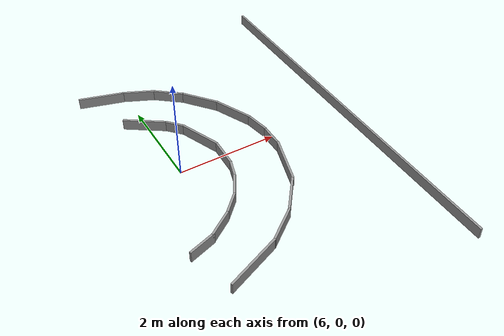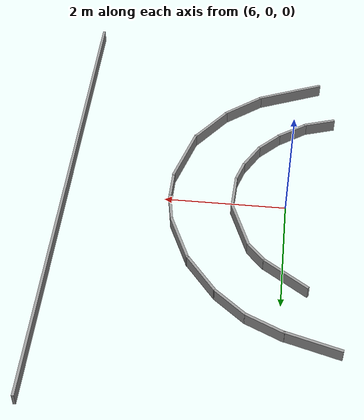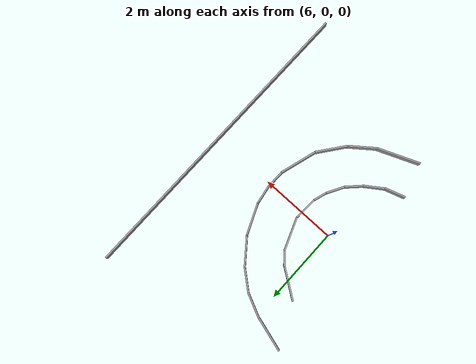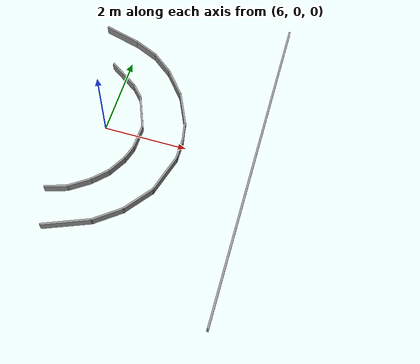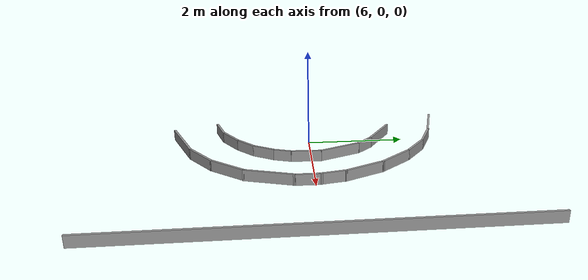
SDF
<sdf version="1.5">
 <world name="default">
  <model name="grey_wall_6">
   <link name="link">
    <pose>-0.467859 -0.097477 1.4 0 -0 0.009516</pose>
    <inertial>
     <inertia><ixx>nan</ixx><ixy>0</ixy><ixz>0</ixz><iyy>nan</iyy><iyz>0</iyz><izz>nan</izz></inertia>
     <mass>0</mass>
    </inertial>
    <visual name="visual">
     <cast_shadows>0</cast_shadows>
     <geometry><box><size>8.07319 0.043266 0.226147</size></box></geometry>
     <material>
      <script>
       <uri>model://grey_wall/materials/scripts</uri>
       <uri>model://grey_wall/materials/textures</uri>
       <name>vrc/grey_wall</name>
      </script>
      <ambient>1 1 1 1</ambient>
      <diffuse>1 1 1 1</diffuse>
      <specular>0 0 0 1</specular>
      <emissive>0 0 0 1</emissive>
     </material>
    </visual>
    <collision name="collision">
     <geometry><box><size>8.07319 0.043266 0.226147</size></box></geometry>
     <surface>
      <friction>
       <ode><mu>1</mu><mu2>1</mu2><fdir1>0 0 0</fdir1><slip1>0</slip1><slip2>0</slip2></ode>
       <torsional>
        <coefficient>1</coefficient>
        <patch_radius>0</patch_radius>
        <surface_radius>0</surface_radius>
        <use_patch_radius>1</use_patch_radius>
        <ode><slip>0</slip></ode>
       </torsional>
      </friction>
      <bounce><restitution_coefficient>0</restitution_coefficient><threshold>1e+06</threshold></bounce>
      <contact>
       <collide_without_contact>0</collide_without_contact>
       <collide_without_contact_bitmask>1</collide_without_contact_bitmask>
       <collide_bitmask>1</collide_bitmask>
       <ode>
        <soft_cfm>0</soft_cfm>
        <soft_erp>0.2</soft_erp>
        <kp>1e+13</kp>
        <kd>1</kd>
        <max_vel>0.01</max_vel>
        <min_depth>0</min_depth>
       </ode>
       <bullet>
        <split_impulse>1</split_impulse>
        <split_impulse_penetration_threshold>-0.01</split_impulse_penetration_threshold>
        <soft_cfm>0</soft_cfm>
        <soft_erp>0.2</soft_erp>
        <kp>1e+13</kp>
        <kd>1</kd>
       </bullet>
      </contact>
     </surface>
    </collision>
   </link>
   <static>1</static>
   <pose>9.55959 0.474995 -1.30963 0 -0 1.55954</pose>
  </model>
  <model name="grey_wall_21">
   <link name="link">
    <pose>0.035544 -0.032533 1.4 0 0 -0.276766</pose>
    <inertial>
     <inertia><ixx>nan</ixx><ixy>0</ixy><ixz>0</ixz><iyy>nan</iyy><iyz>0</iyz><izz>nan</izz></inertia>
     <mass>0</mass>
    </inertial>
    <visual name="visual">
     <cast_shadows>0</cast_shadows>
     <geometry><box><size>0.919493 0.043266 0.226147</size></box></geometry>
     <material>
      <script>
       <uri>model://grey_wall/materials/scripts</uri>
       <uri>model://grey_wall/materials/textures</uri>
       <name>vrc/grey_wall</name>
      </script>
      <ambient>1 1 1 1</ambient>
      <diffuse>1 1 1 1</diffuse>
      <specular>0 0 0 1</specular>
      <emissive>0 0 0 1</emissive>
     </material>
    </visual>
    <collision name="collision">
     <geometry><box><size>0.919493 0.043266 0.226147</size></box></geometry>
     <surface>
      <friction>
       <ode><mu>1</mu><mu2>1</mu2><fdir1>0 0 0</fdir1><slip1>0</slip1><slip2>0</slip2></ode>
       <torsional>
        <coefficient>1</coefficient>
        <patch_radius>0</patch_radius>
        <surface_radius>0</surface_radius>
        <use_patch_radius>1</use_patch_radius>
        <ode><slip>0</slip></ode>
       </torsional>
      </friction>
      <bounce><restitution_coefficient>0</restitution_coefficient><threshold>1e+06</threshold></bounce>
      <contact>
       <collide_without_contact>0</collide_without_contact>
       <collide_without_contact_bitmask>1</collide_without_contact_bitmask>
       <collide_bitmask>1</collide_bitmask>
       <ode>
        <soft_cfm>0</soft_cfm>
        <soft_erp>0.2</soft_erp>
        <kp>1e+13</kp>
        <kd>1</kd>
        <max_vel>0.01</max_vel>
        <min_depth>0</min_depth>
       </ode>
       <bullet>
        <split_impulse>1</split_impulse>
        <split_impulse_penetration_threshold>-0.01</split_impulse_penetration_threshold>
        <soft_cfm>0</soft_cfm>
        <soft_erp>0.2</soft_erp>
        <kp>1e+13</kp>
        <kd>1</kd>
       </bullet>
      </contact>
     </surface>
    </collision>
   </link>
   <static>1</static>
   <pose>5.47269 2.76103 -1.30469 0 -0 0</pose>
  </model>
  <model name="grey_wall_22">
   <link name="link">
    <pose>0.073037 -0.320766 1.4 0 -0 1.98383</pose>
    <inertial>
     <inertia><ixx>nan</ixx><ixy>0</ixy><ixz>0</ixz><iyy>nan</iyy><iyz>0</iyz><izz>nan</izz></inertia>
     <mass>0</mass>
    </inertial>
    <visual name="visual">
     <cast_shadows>0</cast_shadows>
     <geometry><box><size>0.873424 0.043266 0.226147</size></box></geometry>
     <material>
      <script>
       <uri>model://grey_wall/materials/scripts</uri>
       <uri>model://grey_wall/materials/textures</uri>
       <name>vrc/grey_wall</name>
      </script>
      <ambient>1 1 1 1</ambient>
      <diffuse>1 1 1 1</diffuse>
      <specular>0 0 0 1</specular>
      <emissive>0 0 0 1</emissive>
     </material>
    </visual>
    <collision name="collision">
     <geometry><box><size>0.873424 0.043266 0.226147</size></box></geometry>
     <surface>
      <friction>
       <ode><mu>1</mu><mu2>1</mu2><fdir1>0 0 0</fdir1><slip1>0</slip1><slip2>0</slip2></ode>
       <torsional>
        <coefficient>1</coefficient>
        <patch_radius>0</patch_radius>
        <surface_radius>0</surface_radius>
        <use_patch_radius>1</use_patch_radius>
        <ode><slip>0</slip></ode>
       </torsional>
      </friction>
      <bounce><restitution_coefficient>0</restitution_coefficient><threshold>1e+06</threshold></bounce>
      <contact>
       <collide_without_contact>0</collide_without_contact>
       <collide_without_contact_bitmask>1</collide_without_contact_bitmask>
       <collide_bitmask>1</collide_bitmask>
       <ode>
        <soft_cfm>0</soft_cfm>
        <soft_erp>0.2</soft_erp>
        <kp>1e+13</kp>
        <kd>1</kd>
        <max_vel>0.01</max_vel>
        <min_depth>0</min_depth>
       </ode>
       <bullet>
        <split_impulse>1</split_impulse>
        <split_impulse_penetration_threshold>-0.01</split_impulse_penetration_threshold>
        <soft_cfm>0</soft_cfm>
        <soft_erp>0.2</soft_erp>
        <kp>1e+13</kp>
        <kd>1</kd>
       </bullet>
      </contact>
     </surface>
    </collision>
   </link>
   <static>1</static>
   <pose>7.5823 1.27734 -1.30539 0 -0 0</pose>
  </model>
  <model name="grey_wall_23">
   <link name="link">
    <pose>-0.22202 -0.093309 1.4 0 0 -0.901692</pose>
    <inertial>
     <inertia><ixx>nan</ixx><ixy>0</ixy><ixz>0</ixz><iyy>nan</iyy><iyz>0</iyz><izz>nan</izz></inertia>
     <mass>0</mass>
    </inertial>
    <visual name="visual">
     <cast_shadows>0</cast_shadows>
     <geometry><box><size>0.809751 0.043266 0.226147</size></box></geometry>
     <material>
      <script>
       <uri>model://grey_wall/materials/scripts</uri>
       <uri>model://grey_wall/materials/textures</uri>
       <name>vrc/grey_wall</name>
      </script>
      <ambient>1 1 1 1</ambient>
      <diffuse>1 1 1 1</diffuse>
      <specular>0 0 0 1</specular>
      <emissive>0 0 0 1</emissive>
     </material>
    </visual>
    <collision name="collision">
     <geometry><box><size>0.809751 0.043266 0.226147</size></box></geometry>
     <surface>
      <friction>
       <ode><mu>1</mu><mu2>1</mu2><fdir1>0 0 0</fdir1><slip1>0</slip1><slip2>0</slip2></ode>
       <torsional>
        <coefficient>1</coefficient>
        <patch_radius>0</patch_radius>
        <surface_radius>0</surface_radius>
        <use_patch_radius>1</use_patch_radius>
        <ode><slip>0</slip></ode>
       </torsional>
      </friction>
      <bounce><restitution_coefficient>0</restitution_coefficient><threshold>1e+06</threshold></bounce>
      <contact>
       <collide_without_contact>0</collide_without_contact>
       <collide_without_contact_bitmask>1</collide_without_contact_bitmask>
       <collide_bitmask>1</collide_bitmask>
       <ode>
        <soft_cfm>0</soft_cfm>
        <soft_erp>0.2</soft_erp>
        <kp>1e+13</kp>
        <kd>1</kd>
        <max_vel>0.01</max_vel>
        <min_depth>0</min_depth>
       </ode>
       <bullet>
        <split_impulse>1</split_impulse>
        <split_impulse_penetration_threshold>-0.01</split_impulse_penetration_threshold>
        <soft_cfm>0</soft_cfm>
        <soft_erp>0.2</soft_erp>
        <kp>1e+13</kp>
        <kd>1</kd>
       </bullet>
      </contact>
     </surface>
    </collision>
   </link>
   <static>1</static>
   <pose>7.47559 1.72601 -1.30539 0 -0 0</pose>
  </model>
  <model name="grey_wall_24">
   <link name="link">
    <pose>-0.148704 0.041752 1.4 0 0 -0.006459</pose>
    <inertial>
     <inertia><ixx>nan</ixx><ixy>0</ixy><ixz>0</ixz><iyy>nan</iyy><iyz>0</iyz><izz>nan</izz></inertia>
     <mass>0</mass>
    </inertial>
    <visual name="visual">
     <cast_shadows>0</cast_shadows>
     <geometry><box><size>0.555313 0.043266 0.226147</size></box></geometry>
     <material>
      <script>
       <uri>model://grey_wall/materials/scripts</uri>
       <uri>model://grey_wall/materials/textures</uri>
       <name>vrc/grey_wall</name>
      </script>
      <ambient>1 1 1 1</ambient>
      <diffuse>1 1 1 1</diffuse>
      <specular>0 0 0 1</specular>
      <emissive>0 0 0 1</emissive>
     </material>
    </visual>
    <collision name="collision">
     <geometry><box><size>0.555313 0.043266 0.226147</size></box></geometry>
     <surface>
      <friction>
       <ode><mu>1</mu><mu2>1</mu2><fdir1>0 0 0</fdir1><slip1>0</slip1><slip2>0</slip2></ode>
       <torsional>
        <coefficient>1</coefficient>
        <patch_radius>0</patch_radius>
        <surface_radius>0</surface_radius>
        <use_patch_radius>1</use_patch_radius>
        <ode><slip>0</slip></ode>
       </torsional>
      </friction>
      <bounce><restitution_coefficient>0</restitution_coefficient><threshold>1e+06</threshold></bounce>
      <contact>
       <collide_without_contact>0</collide_without_contact>
       <collide_without_contact_bitmask>1</collide_without_contact_bitmask>
       <collide_bitmask>1</collide_bitmask>
       <ode>
        <soft_cfm>0</soft_cfm>
        <soft_erp>0.2</soft_erp>
        <kp>1e+13</kp>
        <kd>1</kd>
        <max_vel>0.01</max_vel>
        <min_depth>0</min_depth>
       </ode>
       <bullet>
        <split_impulse>1</split_impulse>
        <split_impulse_penetration_threshold>-0.01</split_impulse_penetration_threshold>
        <soft_cfm>0</soft_cfm>
        <soft_erp>0.2</soft_erp>
        <kp>1e+13</kp>
        <kd>1</kd>
       </bullet>
      </contact>
     </surface>
    </collision>
   </link>
   <static>1</static>
   <pose>7.94232 -0.003249 -1.30963 0 -0 1.55954</pose>
  </model>
  <model name="grey_wall_36">
   <link name="link">
    <pose>0.116198 0.10218 1.4 0 -0 0.389479</pose>
    <inertial>
     <inertia><ixx>nan</ixx><ixy>0</ixy><ixz>0</ixz><iyy>nan</iyy><iyz>0</iyz><izz>nan</izz></inertia>
     <mass>0</mass>
    </inertial>
    <visual name="visual">
     <cast_shadows>0</cast_shadows>
     <geometry><box><size>1.15976 0.043266 0.226147</size></box></geometry>
     <material>
      <script>
       <uri>model://grey_wall/materials/scripts</uri>
       <uri>model://grey_wall/materials/textures</uri>
       <name>vrc/grey_wall</name>
      </script>
      <ambient>1 1 1 1</ambient>
      <diffuse>1 1 1 1</diffuse>
      <specular>0 0 0 1</specular>
      <emissive>0 0 0 1</emissive>
     </material>
    </visual>
    <collision name="collision">
     <geometry><box><size>1.15976 0.043266 0.226147</size></box></geometry>
     <surface>
      <friction>
       <ode><mu>1</mu><mu2>1</mu2><fdir1>0 0 0</fdir1><slip1>0</slip1><slip2>0</slip2></ode>
       <torsional>
        <coefficient>1</coefficient>
        <patch_radius>0</patch_radius>
        <surface_radius>0</surface_radius>
        <use_patch_radius>1</use_patch_radius>
        <ode><slip>0</slip></ode>
       </torsional>
      </friction>
      <bounce><restitution_coefficient>0</restitution_coefficient><threshold>1e+06</threshold></bounce>
      <contact>
       <collide_without_contact>0</collide_without_contact>
       <collide_without_contact_bitmask>1</collide_without_contact_bitmask>
       <collide_bitmask>1</collide_bitmask>
       <ode>
        <soft_cfm>0</soft_cfm>
        <soft_erp>0.2</soft_erp>
        <kp>1e+13</kp>
        <kd>1</kd>
        <max_vel>0.01</max_vel>
        <min_depth>0</min_depth>
       </ode>
       <bullet>
        <split_impulse>1</split_impulse>
        <split_impulse_penetration_threshold>-0.01</split_impulse_penetration_threshold>
        <soft_cfm>0</soft_cfm>
        <soft_erp>0.2</soft_erp>
        <kp>1e+13</kp>
        <kd>1</kd>
       </bullet>
      </contact>
     </surface>
    </collision>
   </link>
   <static>1</static>
   <pose>5.91093 -2.74839 -1.30539 0 -0 0</pose>
  </model>
  <model name="grey_wall_37">
   <link name="link">
    <pose>0.036784 0.077166 1.4 0 -0 0.922832</pose>
    <inertial>
     <inertia><ixx>nan</ixx><ixy>0</ixy><ixz>0</ixz><iyy>nan</iyy><iyz>0</iyz><izz>nan</izz></inertia>
     <mass>0</mass>
    </inertial>
    <visual name="visual">
     <cast_shadows>0</cast_shadows>
     <geometry><box><size>0.837799 0.043266 0.226147</size></box></geometry>
     <material>
      <script>
       <uri>model://grey_wall/materials/scripts</uri>
       <uri>model://grey_wall/materials/textures</uri>
       <name>vrc/grey_wall</name>
      </script>
      <ambient>1 1 1 1</ambient>
      <diffuse>1 1 1 1</diffuse>
      <specular>0 0 0 1</specular>
      <emissive>0 0 0 1</emissive>
     </material>
    </visual>
    <collision name="collision">
     <geometry><box><size>0.837799 0.043266 0.226147</size></box></geometry>
     <surface>
      <friction>
       <ode><mu>1</mu><mu2>1</mu2><fdir1>0 0 0</fdir1><slip1>0</slip1><slip2>0</slip2></ode>
       <torsional>
        <coefficient>1</coefficient>
        <patch_radius>0</patch_radius>
        <surface_radius>0</surface_radius>
        <use_patch_radius>1</use_patch_radius>
        <ode><slip>0</slip></ode>
       </torsional>
      </friction>
      <bounce><restitution_coefficient>0</restitution_coefficient><threshold>1e+06</threshold></bounce>
      <contact>
       <collide_without_contact>0</collide_without_contact>
       <collide_without_contact_bitmask>1</collide_without_contact_bitmask>
       <collide_bitmask>1</collide_bitmask>
       <ode>
        <soft_cfm>0</soft_cfm>
        <soft_erp>0.2</soft_erp>
        <kp>1e+13</kp>
        <kd>1</kd>
        <max_vel>0.01</max_vel>
        <min_depth>0</min_depth>
       </ode>
       <bullet>
        <split_impulse>1</split_impulse>
        <split_impulse_penetration_threshold>-0.01</split_impulse_penetration_threshold>
        <soft_cfm>0</soft_cfm>
        <soft_erp>0.2</soft_erp>
        <kp>1e+13</kp>
        <kd>1</kd>
       </bullet>
      </contact>
     </surface>
    </collision>
   </link>
   <static>1</static>
   <pose>7.33693 -1.73335 -1.30539 0 -0 0</pose>
  </model>
  <model name="grey_wall_38">
   <link name="link">
    <pose>-0.321079 0.034986 1.4 0 -0 0.659434</pose>
    <inertial>
     <inertia><ixx>nan</ixx><ixy>0</ixy><ixz>0</ixz><iyy>nan</iyy><iyz>0</iyz><izz>nan</izz></inertia>
     <mass>0</mass>
    </inertial>
    <visual name="visual">
     <cast_shadows>0</cast_shadows>
     <geometry><box><size>0.779546 0.043266 0.226147</size></box></geometry>
     <material>
      <script>
       <uri>model://grey_wall/materials/scripts</uri>
       <uri>model://grey_wall/materials/textures</uri>
       <name>vrc/grey_wall</name>
      </script>
      <ambient>1 1 1 1</ambient>
      <diffuse>1 1 1 1</diffuse>
      <specular>0 0 0 1</specular>
      <emissive>0 0 0 1</emissive>
     </material>
    </visual>
    <collision name="collision">
     <geometry><box><size>0.779546 0.043266 0.226147</size></box></geometry>
     <surface>
      <friction>
       <ode><mu>1</mu><mu2>1</mu2><fdir1>0 0 0</fdir1><slip1>0</slip1><slip2>0</slip2></ode>
       <torsional>
        <coefficient>1</coefficient>
        <patch_radius>0</patch_radius>
        <surface_radius>0</surface_radius>
        <use_patch_radius>1</use_patch_radius>
        <ode><slip>0</slip></ode>
       </torsional>
      </friction>
      <bounce><restitution_coefficient>0</restitution_coefficient><threshold>1e+06</threshold></bounce>
      <contact>
       <collide_without_contact>0</collide_without_contact>
       <collide_without_contact_bitmask>1</collide_without_contact_bitmask>
       <collide_bitmask>1</collide_bitmask>
       <ode>
        <soft_cfm>0</soft_cfm>
        <soft_erp>0.2</soft_erp>
        <kp>1e+13</kp>
        <kd>1</kd>
        <max_vel>0.01</max_vel>
        <min_depth>0</min_depth>
       </ode>
       <bullet>
        <split_impulse>1</split_impulse>
        <split_impulse_penetration_threshold>-0.01</split_impulse_penetration_threshold>
        <soft_cfm>0</soft_cfm>
        <soft_erp>0.2</soft_erp>
        <kp>1e+13</kp>
        <kd>1</kd>
       </bullet>
      </contact>
     </surface>
    </collision>
   </link>
   <static>1</static>
   <pose>7.15892 -2.24117 -1.30539 0 -0 0</pose>
  </model>
  <model name="grey_wall_39">
   <link name="link">
    <pose>-0.006509 0.690852 1.4 0 -0 1.28305</pose>
    <inertial>
     <inertia><ixx>nan</ixx><ixy>0</ixy><ixz>0</ixz><iyy>nan</iyy><iyz>0</iyz><izz>nan</izz></inertia>
     <mass>0</mass>
    </inertial>
    <visual name="visual">
     <cast_shadows>0</cast_shadows>
     <geometry><box><size>1.0238 0.043266 0.226147</size></box></geometry>
     <material>
      <script>
       <uri>model://grey_wall/materials/scripts</uri>
       <uri>model://grey_wall/materials/textures</uri>
       <name>vrc/grey_wall</name>
      </script>
      <ambient>1 1 1 1</ambient>
      <diffuse>1 1 1 1</diffuse>
      <specular>0 0 0 1</specular>
      <emissive>0 0 0 1</emissive>
     </material>
    </visual>
    <collision name="collision">
     <geometry><box><size>1.0238 0.043266 0.226147</size></box></geometry>
     <surface>
      <friction>
       <ode><mu>1</mu><mu2>1</mu2><fdir1>0 0 0</fdir1><slip1>0</slip1><slip2>0</slip2></ode>
       <torsional>
        <coefficient>1</coefficient>
        <patch_radius>0</patch_radius>
        <surface_radius>0</surface_radius>
        <use_patch_radius>1</use_patch_radius>
        <ode><slip>0</slip></ode>
       </torsional>
      </friction>
      <bounce><restitution_coefficient>0</restitution_coefficient><threshold>1e+06</threshold></bounce>
      <contact>
       <collide_without_contact>0</collide_without_contact>
       <collide_without_contact_bitmask>1</collide_without_contact_bitmask>
       <collide_bitmask>1</collide_bitmask>
       <ode>
        <soft_cfm>0</soft_cfm>
        <soft_erp>0.2</soft_erp>
        <kp>1e+13</kp>
        <kd>1</kd>
        <max_vel>0.01</max_vel>
        <min_depth>0</min_depth>
       </ode>
       <bullet>
        <split_impulse>1</split_impulse>
        <split_impulse_penetration_threshold>-0.01</split_impulse_penetration_threshold>
        <soft_cfm>0</soft_cfm>
        <soft_erp>0.2</soft_erp>
        <kp>1e+13</kp>
        <kd>1</kd>
       </bullet>
      </contact>
     </surface>
    </collision>
   </link>
   <static>1</static>
   <pose>7.76319 -1.56149 -1.30539 0 -0 0</pose>
  </model>
  <model name="grey_wall_40">
   <link name="link">
    <pose>-0.049512 -0.185246 1.4 0 -0 1.74251</pose>
    <inertial>
     <inertia><ixx>nan</ixx><ixy>0</ixy><ixz>0</ixz><iyy>nan</iyy><iyz>0</iyz><izz>nan</izz></inertia>
     <mass>0</mass>
    </inertial>
    <visual name="visual">
     <cast_shadows>0</cast_shadows>
     <geometry><box><size>0.521085 0.043266 0.226147</size></box></geometry>
     <material>
      <script>
       <uri>model://grey_wall/materials/scripts</uri>
       <uri>model://grey_wall/materials/textures</uri>
       <name>vrc/grey_wall</name>
      </script>
      <ambient>1 1 1 1</ambient>
      <diffuse>1 1 1 1</diffuse>
      <specular>0 0 0 1</specular>
      <emissive>0 0 0 1</emissive>
     </material>
    </visual>
    <collision name="collision">
     <geometry><box><size>0.521085 0.043266 0.226147</size></box></geometry>
     <surface>
      <friction>
       <ode><mu>1</mu><mu2>1</mu2><fdir1>0 0 0</fdir1><slip1>0</slip1><slip2>0</slip2></ode>
       <torsional>
        <coefficient>1</coefficient>
        <patch_radius>0</patch_radius>
        <surface_radius>0</surface_radius>
        <use_patch_radius>1</use_patch_radius>
        <ode><slip>0</slip></ode>
       </torsional>
      </friction>
      <bounce><restitution_coefficient>0</restitution_coefficient><threshold>1e+06</threshold></bounce>
      <contact>
       <collide_without_contact>0</collide_without_contact>
       <collide_without_contact_bitmask>1</collide_without_contact_bitmask>
       <collide_bitmask>1</collide_bitmask>
       <ode>
        <soft_cfm>0</soft_cfm>
        <soft_erp>0.2</soft_erp>
        <kp>1e+13</kp>
        <kd>1</kd>
        <max_vel>0.01</max_vel>
        <min_depth>0</min_depth>
       </ode>
       <bullet>
        <split_impulse>1</split_impulse>
        <split_impulse_penetration_threshold>-0.01</split_impulse_penetration_threshold>
        <soft_cfm>0</soft_cfm>
        <soft_erp>0.2</soft_erp>
        <kp>1e+13</kp>
        <kd>1</kd>
       </bullet>
      </contact>
     </surface>
    </collision>
   </link>
   <static>1</static>
   <pose>7.91189 0.517303 -1.30539 0 -0 0</pose>
  </model>
  <model name="grey_wall_49">
   <link name="link">
    <pose>0.087284 -0.311828 1.4 0 -0 1.9441</pose>
    <inertial>
     <inertia><ixx>nan</ixx><ixy>0</ixy><ixz>0</ixz><iyy>nan</iyy><iyz>0</iyz><izz>nan</izz></inertia>
     <mass>0</mass>
    </inertial>
    <visual name="visual">
     <cast_shadows>0</cast_shadows>
     <geometry><box><size>0.873424 0.043266 0.226147</size></box></geometry>
     <material>
      <script>
       <uri>model://grey_wall/materials/scripts</uri>
       <uri>model://grey_wall/materials/textures</uri>
       <name>vrc/grey_wall</name>
      </script>
      <ambient>1 1 1 1</ambient>
      <diffuse>1 1 1 1</diffuse>
      <specular>0 0 0 1</specular>
      <emissive>0 0 0 1</emissive>
     </material>
    </visual>
    <collision name="collision">
     <geometry><box><size>0.873424 0.043266 0.226147</size></box></geometry>
     <surface>
      <friction>
       <ode><mu>1</mu><mu2>1</mu2><fdir1>0 0 0</fdir1><slip1>0</slip1><slip2>0</slip2></ode>
       <torsional>
        <coefficient>1</coefficient>
        <patch_radius>0</patch_radius>
        <surface_radius>0</surface_radius>
        <use_patch_radius>1</use_patch_radius>
        <ode><slip>0</slip></ode>
       </torsional>
      </friction>
      <bounce><restitution_coefficient>0</restitution_coefficient><threshold>1e+06</threshold></bounce>
      <contact>
       <collide_without_contact>0</collide_without_contact>
       <collide_without_contact_bitmask>1</collide_without_contact_bitmask>
       <collide_bitmask>1</collide_bitmask>
       <ode>
        <soft_cfm>0</soft_cfm>
        <soft_erp>0.2</soft_erp>
        <kp>1e+13</kp>
        <kd>1</kd>
        <max_vel>0.01</max_vel>
        <min_depth>0</min_depth>
       </ode>
       <bullet>
        <split_impulse>1</split_impulse>
        <split_impulse_penetration_threshold>-0.01</split_impulse_penetration_threshold>
        <soft_cfm>0</soft_cfm>
        <soft_erp>0.2</soft_erp>
        <kp>1e+13</kp>
        <kd>1</kd>
       </bullet>
      </contact>
     </surface>
    </collision>
   </link>
   <static>1</static>
   <pose>6.62902 0.902083 -1.30539 0 -0 0</pose>
  </model>
  <model name="grey_wall_50">
   <link name="link">
    <pose>-0.224311 -0.28849 1.4 0 0 -0.60566</pose>
    <inertial>
     <inertia><ixx>nan</ixx><ixy>0</ixy><ixz>0</ixz><iyy>nan</iyy><iyz>0</iyz><izz>nan</izz></inertia>
     <mass>0</mass>
    </inertial>
    <visual name="visual">
     <cast_shadows>0</cast_shadows>
     <geometry><box><size>0.86914 0.043266 0.226147</size></box></geometry>
     <material>
      <script>
       <uri>model://grey_wall/materials/scripts</uri>
       <uri>model://grey_wall/materials/textures</uri>
       <name>vrc/grey_wall</name>
      </script>
      <ambient>1 1 1 1</ambient>
      <diffuse>1 1 1 1</diffuse>
      <specular>0 0 0 1</specular>
      <emissive>0 0 0 1</emissive>
     </material>
    </visual>
    <collision name="collision">
     <geometry><box><size>0.86914 0.043266 0.226147</size></box></geometry>
     <surface>
      <friction>
       <ode><mu>1</mu><mu2>1</mu2><fdir1>0 0 0</fdir1><slip1>0</slip1><slip2>0</slip2></ode>
       <torsional>
        <coefficient>1</coefficient>
        <patch_radius>0</patch_radius>
        <surface_radius>0</surface_radius>
        <use_patch_radius>1</use_patch_radius>
        <ode><slip>0</slip></ode>
       </torsional>
      </friction>
      <bounce><restitution_coefficient>0</restitution_coefficient><threshold>1e+06</threshold></bounce>
      <contact>
       <collide_without_contact>0</collide_without_contact>
       <collide_without_contact_bitmask>1</collide_without_contact_bitmask>
       <collide_bitmask>1</collide_bitmask>
       <ode>
        <soft_cfm>0</soft_cfm>
        <soft_erp>0.2</soft_erp>
        <kp>1e+13</kp>
        <kd>1</kd>
        <max_vel>0.01</max_vel>
        <min_depth>0</min_depth>
       </ode>
       <bullet>
        <split_impulse>1</split_impulse>
        <split_impulse_penetration_threshold>-0.01</split_impulse_penetration_threshold>
        <soft_cfm>0</soft_cfm>
        <soft_erp>0.2</soft_erp>
        <kp>1e+13</kp>
        <kd>1</kd>
       </bullet>
      </contact>
     </surface>
    </collision>
   </link>
   <static>1</static>
   <pose>6.17778 1.80909 -1.30539 0 -0 0</pose>
  </model>
  <model name="grey_wall_51">
   <link name="link">
    <pose>-0.1172 -0.224507 1.4 0 0 -0.843423</pose>
    <inertial>
     <inertia><ixx>nan</ixx><ixy>0</ixy><ixz>0</ixz><iyy>nan</iyy><iyz>0</iyz><izz>nan</izz></inertia>
     <mass>0</mass>
    </inertial>
    <visual name="visual">
     <cast_shadows>0</cast_shadows>
     <geometry><box><size>0.405649 0.043266 0.226147</size></box></geometry>
     <material>
      <script>
       <uri>model://grey_wall/materials/scripts</uri>
       <uri>model://grey_wall/materials/textures</uri>
       <name>vrc/grey_wall</name>
      </script>
      <ambient>1 1 1 1</ambient>
      <diffuse>1 1 1 1</diffuse>
      <specular>0 0 0 1</specular>
      <emissive>0 0 0 1</emissive>
     </material>
    </visual>
    <collision name="collision">
     <geometry><box><size>0.405649 0.043266 0.226147</size></box></geometry>
     <surface>
      <friction>
       <ode><mu>1</mu><mu2>1</mu2><fdir1>0 0 0</fdir1><slip1>0</slip1><slip2>0</slip2></ode>
       <torsional>
        <coefficient>1</coefficient>
        <patch_radius>0</patch_radius>
        <surface_radius>0</surface_radius>
        <use_patch_radius>1</use_patch_radius>
        <ode><slip>0</slip></ode>
       </torsional>
      </friction>
      <bounce><restitution_coefficient>0</restitution_coefficient><threshold>1e+06</threshold></bounce>
      <contact>
       <collide_without_contact>0</collide_without_contact>
       <collide_without_contact_bitmask>1</collide_without_contact_bitmask>
       <collide_bitmask>1</collide_bitmask>
       <ode>
        <soft_cfm>0</soft_cfm>
        <soft_erp>0.2</soft_erp>
        <kp>1e+13</kp>
        <kd>1</kd>
        <max_vel>0.01</max_vel>
        <min_depth>0</min_depth>
       </ode>
       <bullet>
        <split_impulse>1</split_impulse>
        <split_impulse_penetration_threshold>-0.01</split_impulse_penetration_threshold>
        <soft_cfm>0</soft_cfm>
        <soft_erp>0.2</soft_erp>
        <kp>1e+13</kp>
        <kd>1</kd>
       </bullet>
      </contact>
     </surface>
    </collision>
   </link>
   <static>1</static>
   <pose>6.54784 1.36215 -1.30539 0 -0 0</pose>
  </model>
  <model name="grey_wall_52">
   <link name="link">
    <pose>0.066832 -0.424595 1.4 0 0 -0.687012</pose>
    <inertial>
     <inertia><ixx>nan</ixx><ixy>0</ixy><ixz>0</ixz><iyy>nan</iyy><iyz>0</iyz><izz>nan</izz></inertia>
     <mass>0</mass>
    </inertial>
    <visual name="visual">
     <cast_shadows>0</cast_shadows>
     <geometry><box><size>0.645754 0.043266 0.226147</size></box></geometry>
     <material>
      <script>
       <uri>model://grey_wall/materials/scripts</uri>
       <uri>model://grey_wall/materials/textures</uri>
       <name>vrc/grey_wall</name>
      </script>
      <ambient>1 1 1 1</ambient>
      <diffuse>1 1 1 1</diffuse>
      <specular>0 0 0 1</specular>
      <emissive>0 0 0 1</emissive>
     </material>
    </visual>
    <collision name="collision">
     <geometry><box><size>0.645754 0.043266 0.226147</size></box></geometry>
     <surface>
      <friction>
       <ode><mu>1</mu><mu2>1</mu2><fdir1>0 0 0</fdir1><slip1>0</slip1><slip2>0</slip2></ode>
       <torsional>
        <coefficient>1</coefficient>
        <patch_radius>0</patch_radius>
        <surface_radius>0</surface_radius>
        <use_patch_radius>1</use_patch_radius>
        <ode><slip>0</slip></ode>
       </torsional>
      </friction>
      <bounce><restitution_coefficient>0</restitution_coefficient><threshold>1e+06</threshold></bounce>
      <contact>
       <collide_without_contact>0</collide_without_contact>
       <collide_without_contact_bitmask>1</collide_without_contact_bitmask>
       <collide_bitmask>1</collide_bitmask>
       <ode>
        <soft_cfm>0</soft_cfm>
        <soft_erp>0.2</soft_erp>
        <kp>1e+13</kp>
        <kd>1</kd>
        <max_vel>0.01</max_vel>
        <min_depth>0</min_depth>
       </ode>
       <bullet>
        <split_impulse>1</split_impulse>
        <split_impulse_penetration_threshold>-0.01</split_impulse_penetration_threshold>
        <soft_cfm>0</soft_cfm>
        <soft_erp>0.2</soft_erp>
        <kp>1e+13</kp>
        <kd>1</kd>
       </bullet>
      </contact>
     </surface>
    </collision>
   </link>
   <static>1</static>
   <pose>6.70004 2.56568 -1.30539 0 -0 0</pose>
  </model>
  <model name="grey_wall_53">
   <link name="link">
    <pose>-0.035124 -0.000379 1.4 0 0 -0.433841</pose>
    <inertial>
     <inertia><ixx>nan</ixx><ixy>0</ixy><ixz>0</ixz><iyy>nan</iyy><iyz>0</iyz><izz>nan</izz></inertia>
     <mass>0</mass>
    </inertial>
    <visual name="visual">
     <cast_shadows>0</cast_shadows>
     <geometry><box><size>0.667869 0.043266 0.226147</size></box></geometry>
     <material>
      <script>
       <uri>model://grey_wall/materials/scripts</uri>
       <uri>model://grey_wall/materials/textures</uri>
       <name>vrc/grey_wall</name>
      </script>
      <ambient>1 1 1 1</ambient>
      <diffuse>1 1 1 1</diffuse>
      <specular>0 0 0 1</specular>
      <emissive>0 0 0 1</emissive>
     </material>
    </visual>
    <collision name="collision">
     <geometry><box><size>0.667869 0.043266 0.226147</size></box></geometry>
     <surface>
      <friction>
       <ode><mu>1</mu><mu2>1</mu2><fdir1>0 0 0</fdir1><slip1>0</slip1><slip2>0</slip2></ode>
       <torsional>
        <coefficient>1</coefficient>
        <patch_radius>0</patch_radius>
        <surface_radius>0</surface_radius>
        <use_patch_radius>1</use_patch_radius>
        <ode><slip>0</slip></ode>
       </torsional>
      </friction>
      <bounce><restitution_coefficient>0</restitution_coefficient><threshold>1e+06</threshold></bounce>
      <contact>
       <collide_without_contact>0</collide_without_contact>
       <collide_without_contact_bitmask>1</collide_without_contact_bitmask>
       <collide_bitmask>1</collide_bitmask>
       <ode>
        <soft_cfm>0</soft_cfm>
        <soft_erp>0.2</soft_erp>
        <kp>1e+13</kp>
        <kd>1</kd>
        <max_vel>0.01</max_vel>
        <min_depth>0</min_depth>
       </ode>
       <bullet>
        <split_impulse>1</split_impulse>
        <split_impulse_penetration_threshold>-0.01</split_impulse_penetration_threshold>
        <soft_cfm>0</soft_cfm>
        <soft_erp>0.2</soft_erp>
        <kp>1e+13</kp>
        <kd>1</kd>
       </bullet>
      </contact>
     </surface>
    </collision>
   </link>
   <static>1</static>
   <pose>6.26097 2.47882 -1.30469 0 -0 0</pose>
  </model>
  <model name="grey_wall_55">
   <link name="link">
    <pose>0.075433 0.797766 1.4 0 -0 1.52816</pose>
    <inertial>
     <inertia><ixx>nan</ixx><ixy>0</ixy><ixz>0</ixz><iyy>nan</iyy><iyz>0</iyz><izz>nan</izz></inertia>
     <mass>0</mass>
    </inertial>
    <visual name="visual">
     <cast_shadows>0</cast_shadows>
     <geometry><box><size>0.618279 0.043266 0.226147</size></box></geometry>
     <material>
      <script>
       <uri>model://grey_wall/materials/scripts</uri>
       <uri>model://grey_wall/materials/textures</uri>
       <name>vrc/grey_wall</name>
      </script>
      <ambient>1 1 1 1</ambient>
      <diffuse>1 1 1 1</diffuse>
      <specular>0 0 0 1</specular>
      <emissive>0 0 0 1</emissive>
     </material>
    </visual>
    <collision name="collision">
     <geometry><box><size>0.618279 0.043266 0.226147</size></box></geometry>
     <surface>
      <friction>
       <ode><mu>1</mu><mu2>1</mu2><fdir1>0 0 0</fdir1><slip1>0</slip1><slip2>0</slip2></ode>
       <torsional>
        <coefficient>1</coefficient>
        <patch_radius>0</patch_radius>
        <surface_radius>0</surface_radius>
        <use_patch_radius>1</use_patch_radius>
        <ode><slip>0</slip></ode>
       </torsional>
      </friction>
      <bounce><restitution_coefficient>0</restitution_coefficient><threshold>1e+06</threshold></bounce>
      <contact>
       <collide_without_contact>0</collide_without_contact>
       <collide_without_contact_bitmask>1</collide_without_contact_bitmask>
       <collide_bitmask>1</collide_bitmask>
       <ode>
        <soft_cfm>0</soft_cfm>
        <soft_erp>0.2</soft_erp>
        <kp>1e+13</kp>
        <kd>1</kd>
        <max_vel>0.01</max_vel>
        <min_depth>0</min_depth>
       </ode>
       <bullet>
        <split_impulse>1</split_impulse>
        <split_impulse_penetration_threshold>-0.01</split_impulse_penetration_threshold>
        <soft_cfm>0</soft_cfm>
        <soft_erp>0.2</soft_erp>
        <kp>1e+13</kp>
        <kd>1</kd>
       </bullet>
      </contact>
     </surface>
    </collision>
   </link>
   <static>1</static>
   <pose>6.78368 -0.908327 -1.30539 0 -0 0</pose>
  </model>
  <model name="grey_wall_56">
   <link name="link">
    <pose>0.262006 0.20349 1.4 0 -0 0.607244</pose>
    <inertial>
     <inertia><ixx>nan</ixx><ixy>0</ixy><ixz>0</ixz><iyy>nan</iyy><iyz>0</iyz><izz>nan</izz></inertia>
     <mass>0</mass>
    </inertial>
    <visual name="visual">
     <cast_shadows>0</cast_shadows>
     <geometry><box><size>0.572378 0.043266 0.226147</size></box></geometry>
     <material>
      <script>
       <uri>model://grey_wall/materials/scripts</uri>
       <uri>model://grey_wall/materials/textures</uri>
       <name>vrc/grey_wall</name>
      </script>
      <ambient>1 1 1 1</ambient>
      <diffuse>1 1 1 1</diffuse>
      <specular>0 0 0 1</specular>
      <emissive>0 0 0 1</emissive>
     </material>
    </visual>
    <collision name="collision">
     <geometry><box><size>0.572378 0.043266 0.226147</size></box></geometry>
     <surface>
      <friction>
       <ode><mu>1</mu><mu2>1</mu2><fdir1>0 0 0</fdir1><slip1>0</slip1><slip2>0</slip2></ode>
       <torsional>
        <coefficient>1</coefficient>
        <patch_radius>0</patch_radius>
        <surface_radius>0</surface_radius>
        <use_patch_radius>1</use_patch_radius>
        <ode><slip>0</slip></ode>
       </torsional>
      </friction>
      <bounce><restitution_coefficient>0</restitution_coefficient><threshold>1e+06</threshold></bounce>
      <contact>
       <collide_without_contact>0</collide_without_contact>
       <collide_without_contact_bitmask>1</collide_without_contact_bitmask>
       <collide_bitmask>1</collide_bitmask>
       <ode>
        <soft_cfm>0</soft_cfm>
        <soft_erp>0.2</soft_erp>
        <kp>1e+13</kp>
        <kd>1</kd>
        <max_vel>0.01</max_vel>
        <min_depth>0</min_depth>
       </ode>
       <bullet>
        <split_impulse>1</split_impulse>
        <split_impulse_penetration_threshold>-0.01</split_impulse_penetration_threshold>
        <soft_cfm>0</soft_cfm>
        <soft_erp>0.2</soft_erp>
        <kp>1e+13</kp>
        <kd>1</kd>
       </bullet>
      </contact>
     </surface>
    </collision>
   </link>
   <static>1</static>
   <pose>5.69053 -1.8541 -1.30539 0 -0 0</pose>
  </model>
  <model name="grey_wall_58">
   <link name="link">
    <pose>-0.050483 0.047388 1.4 0 -0 0.310417</pose>
    <inertial>
     <inertia><ixx>nan</ixx><ixy>0</ixy><ixz>0</ixz><iyy>nan</iyy><iyz>0</iyz><izz>nan</izz></inertia>
     <mass>0</mass>
    </inertial>
    <visual name="visual">
     <cast_shadows>0</cast_shadows>
     <geometry><box><size>0.553723 0.043266 0.226147</size></box></geometry>
     <material>
      <script>
       <uri>model://grey_wall/materials/scripts</uri>
       <uri>model://grey_wall/materials/textures</uri>
       <name>vrc/grey_wall</name>
      </script>
      <ambient>1 1 1 1</ambient>
      <diffuse>1 1 1 1</diffuse>
      <specular>0 0 0 1</specular>
      <emissive>0 0 0 1</emissive>
     </material>
    </visual>
    <collision name="collision">
     <geometry><box><size>0.553723 0.043266 0.226147</size></box></geometry>
     <surface>
      <friction>
       <ode><mu>1</mu><mu2>1</mu2><fdir1>0 0 0</fdir1><slip1>0</slip1><slip2>0</slip2></ode>
       <torsional>
        <coefficient>1</coefficient>
        <patch_radius>0</patch_radius>
        <surface_radius>0</surface_radius>
        <use_patch_radius>1</use_patch_radius>
        <ode><slip>0</slip></ode>
       </torsional>
      </friction>
      <bounce><restitution_coefficient>0</restitution_coefficient><threshold>1e+06</threshold></bounce>
      <contact>
       <collide_without_contact>0</collide_without_contact>
       <collide_without_contact_bitmask>1</collide_without_contact_bitmask>
       <collide_bitmask>1</collide_bitmask>
       <ode>
        <soft_cfm>0</soft_cfm>
        <soft_erp>0.2</soft_erp>
        <kp>1e+13</kp>
        <kd>1</kd>
        <max_vel>0.01</max_vel>
        <min_depth>0</min_depth>
       </ode>
       <bullet>
        <split_impulse>1</split_impulse>
        <split_impulse_penetration_threshold>-0.01</split_impulse_penetration_threshold>
        <soft_cfm>0</soft_cfm>
        <soft_erp>0.2</soft_erp>
        <kp>1e+13</kp>
        <kd>1</kd>
       </bullet>
      </contact>
     </surface>
    </collision>
   </link>
   <static>1</static>
   <pose>5.53718 -1.934 -1.30539 0 -0 0</pose>
  </model>
  <model name="grey_wall_60">
   <link name="link">
    <pose>0.02219 0.085361 1.4 0 -0 1.05914</pose>
    <inertial>
     <inertia><ixx>nan</ixx><ixy>0</ixy><ixz>0</ixz><iyy>nan</iyy><iyz>0</iyz><izz>nan</izz></inertia>
     <mass>0</mass>
    </inertial>
    <visual name="visual">
     <cast_shadows>0</cast_shadows>
     <geometry><box><size>0.490047 0.043266 0.226147</size></box></geometry>
     <material>
      <script>
       <uri>model://grey_wall/materials/scripts</uri>
       <uri>model://grey_wall/materials/textures</uri>
       <name>vrc/grey_wall</name>
      </script>
      <ambient>1 1 1 1</ambient>
      <diffuse>1 1 1 1</diffuse>
      <specular>0 0 0 1</specular>
      <emissive>0 0 0 1</emissive>
     </material>
    </visual>
    <collision name="collision">
     <geometry><box><size>0.490047 0.043266 0.226147</size></box></geometry>
     <surface>
      <friction>
       <ode><mu>1</mu><mu2>1</mu2><fdir1>0 0 0</fdir1><slip1>0</slip1><slip2>0</slip2></ode>
       <torsional>
        <coefficient>1</coefficient>
        <patch_radius>0</patch_radius>
        <surface_radius>0</surface_radius>
        <use_patch_radius>1</use_patch_radius>
        <ode><slip>0</slip></ode>
       </torsional>
      </friction>
      <bounce><restitution_coefficient>0</restitution_coefficient><threshold>1e+06</threshold></bounce>
      <contact>
       <collide_without_contact>0</collide_without_contact>
       <collide_without_contact_bitmask>1</collide_without_contact_bitmask>
       <collide_bitmask>1</collide_bitmask>
       <ode>
        <soft_cfm>0</soft_cfm>
        <soft_erp>0.2</soft_erp>
        <kp>1e+13</kp>
        <kd>1</kd>
        <max_vel>0.01</max_vel>
        <min_depth>0</min_depth>
       </ode>
       <bullet>
        <split_impulse>1</split_impulse>
        <split_impulse_penetration_threshold>-0.01</split_impulse_penetration_threshold>
        <soft_cfm>0</soft_cfm>
        <soft_erp>0.2</soft_erp>
        <kp>1e+13</kp>
        <kd>1</kd>
       </bullet>
      </contact>
     </surface>
    </collision>
   </link>
   <static>1</static>
   <pose>6.59865 -1.04057 -1.30539 0 -0 0</pose>
  </model>
  <model name="grey_wall_61">
   <link name="link">
    <pose>0.044074 0.800255 1.4 0 -0 1.2661</pose>
    <inertial>
     <inertia><ixx>nan</ixx><ixy>0</ixy><ixz>0</ixz><iyy>nan</iyy><iyz>0</iyz><izz>nan</izz></inertia>
     <mass>0</mass>
    </inertial>
    <visual name="visual">
     <cast_shadows>0</cast_shadows>
     <geometry><box><size>0.374262 0.043266 0.226147</size></box></geometry>
     <material>
      <script>
       <uri>model://grey_wall/materials/scripts</uri>
       <uri>model://grey_wall/materials/textures</uri>
       <name>vrc/grey_wall</name>
      </script>
      <ambient>1 1 1 1</ambient>
      <diffuse>1 1 1 1</diffuse>
      <specular>0 0 0 1</specular>
      <emissive>0 0 0 1</emissive>
     </material>
    </visual>
    <collision name="collision">
     <geometry><box><size>0.374262 0.043266 0.226147</size></box></geometry>
     <surface>
      <friction>
       <ode><mu>1</mu><mu2>1</mu2><fdir1>0 0 0</fdir1><slip1>0</slip1><slip2>0</slip2></ode>
       <torsional>
        <coefficient>1</coefficient>
        <patch_radius>0</patch_radius>
        <surface_radius>0</surface_radius>
        <use_patch_radius>1</use_patch_radius>
        <ode><slip>0</slip></ode>
       </torsional>
      </friction>
      <bounce><restitution_coefficient>0</restitution_coefficient><threshold>1e+06</threshold></bounce>
      <contact>
       <collide_without_contact>0</collide_without_contact>
       <collide_without_contact_bitmask>1</collide_without_contact_bitmask>
       <collide_bitmask>1</collide_bitmask>
       <ode>
        <soft_cfm>0</soft_cfm>
        <soft_erp>0.2</soft_erp>
        <kp>1e+13</kp>
        <kd>1</kd>
        <max_vel>0.01</max_vel>
        <min_depth>0</min_depth>
       </ode>
       <bullet>
        <split_impulse>1</split_impulse>
        <split_impulse_penetration_threshold>-0.01</split_impulse_penetration_threshold>
        <soft_cfm>0</soft_cfm>
        <soft_erp>0.2</soft_erp>
        <kp>1e+13</kp>
        <kd>1</kd>
       </bullet>
      </contact>
     </surface>
    </collision>
   </link>
   <static>1</static>
   <pose>6.74825 -1.37917 -1.30539 0 -0 0</pose>
  </model>
  <model name="grey_wall_62">
   <link name="link">
    <pose>-0.05021 0.083285 1.4 0 -0 0.790774</pose>
    <inertial>
     <inertia><ixx>nan</ixx><ixy>0</ixy><ixz>0</ixz><iyy>nan</iyy><iyz>0</iyz><izz>nan</izz></inertia>
     <mass>0</mass>
    </inertial>
    <visual name="visual">
     <cast_shadows>0</cast_shadows>
     <geometry><box><size>0.478375 0.043266 0.226147</size></box></geometry>
     <material>
      <script>
       <uri>model://grey_wall/materials/scripts</uri>
       <uri>model://grey_wall/materials/textures</uri>
       <name>vrc/grey_wall</name>
      </script>
      <ambient>1 1 1 1</ambient>
      <diffuse>1 1 1 1</diffuse>
      <specular>0 0 0 1</specular>
      <emissive>0 0 0 1</emissive>
     </material>
    </visual>
    <collision name="collision">
     <geometry><box><size>0.478375 0.043266 0.226147</size></box></geometry>
     <surface>
      <friction>
       <ode><mu>1</mu><mu2>1</mu2><fdir1>0 0 0</fdir1><slip1>0</slip1><slip2>0</slip2></ode>
       <torsional>
        <coefficient>1</coefficient>
        <patch_radius>0</patch_radius>
        <surface_radius>0</surface_radius>
        <use_patch_radius>1</use_patch_radius>
        <ode><slip>0</slip></ode>
       </torsional>
      </friction>
      <bounce><restitution_coefficient>0</restitution_coefficient><threshold>1e+06</threshold></bounce>
      <contact>
       <collide_without_contact>0</collide_without_contact>
       <collide_without_contact_bitmask>1</collide_without_contact_bitmask>
       <collide_bitmask>1</collide_bitmask>
       <ode>
        <soft_cfm>0</soft_cfm>
        <soft_erp>0.2</soft_erp>
        <kp>1e+13</kp>
        <kd>1</kd>
        <max_vel>0.01</max_vel>
        <min_depth>0</min_depth>
       </ode>
       <bullet>
        <split_impulse>1</split_impulse>
        <split_impulse_penetration_threshold>-0.01</split_impulse_penetration_threshold>
        <soft_cfm>0</soft_cfm>
        <soft_erp>0.2</soft_erp>
        <kp>1e+13</kp>
        <kd>1</kd>
       </bullet>
      </contact>
     </surface>
    </collision>
   </link>
   <static>1</static>
   <pose>6.39158 -1.4103 -1.30539 0 -0 0</pose>
  </model>
 </world>
</sdf>
